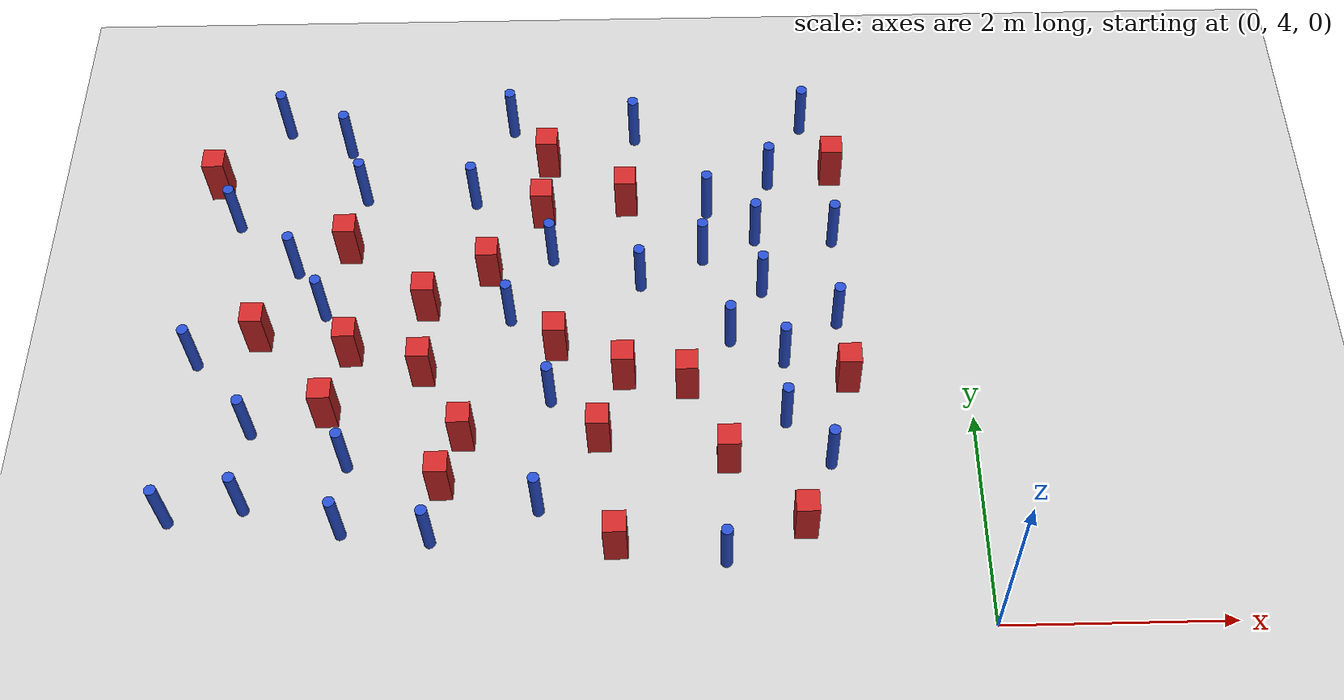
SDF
<sdf version="1.6">
 <world name="default">
  <model name="ground_plane">
   <static>1</static>
   <link name="link">
    <collision name="collision">
     <geometry><plane><normal>0 0 1</normal><size>100 100</size></plane></geometry>
     <surface><friction><ode><mu>100</mu><mu2>50</mu2></ode></friction></surface>
    </collision>
    <visual name="visual">
     <cast_shadows>0</cast_shadows>
     <geometry><plane><normal>0 0 1</normal><size>100 100</size></plane></geometry>
     <material>
      <ambient>1.0 1.0 1.0 1.0</ambient>
      <diffuse>0.8 0.8 0.8 1.0</diffuse>
      <specular>0.01 0.01 0.01 1.000000</specular>
     </material>
    </visual>
   </link>
  </model>
  <model name="square_post_obstacle0">
   <static>true</static>
   <pose>-3.30379232446 5.81546871594 1.91545236811e-07 -7.35059704564e-06 1.12565212e-07 2.39332434364e-05</pose>
   <link name="link">
    <pose>0 0 0.25 0 -0 0</pose>
    <inertial>
     <mass>100</mass>
     <inertia>
      <ixx>0.166667</ixx>
      <ixy>0</ixy>
      <ixz>0</ixz>
      <iyy>0.166667</iyy>
      <iyz>0</iyz>
      <izz>0.166667</izz>
     </inertia>
    </inertial>
    <collision name="collision"><geometry><box><size>.2 .2 .5</size></box></geometry></collision>
    <visual name="visual">
     <geometry><box><size>.2 .2 .5</size></box></geometry>
     <material>
      <script><name>Gazebo/Red</name><uri>file://media/materials/scripts/gazebo.material</uri></script>
     </material>
    </visual>
   </link>
  </model>
  <model name="pole_obstacle9">
   <static>true</static>
   <pose>-1.86990870558 7.98047728358 7.38925637345e-09 -8.47170692799e-08 1.24976764983e-08 -1.74513093021e-07</pose>
   <link name="link">
    <pose>0 0 0.3 0 -0 0</pose>
    <inertial>
     <mass>1</mass>
     <inertia><ixx>0.145833</ixx><ixy>0</ixy><ixz>0</ixz><iyy>0.145833</iyy><iyz>0</iyz><izz>0.125</izz></inertia>
    </inertial>
    <collision name="collision">
     <geometry><cylinder><radius>0.05</radius><length>.6</length></cylinder></geometry>
    </collision>
    <visual name="visual">
     <geometry><cylinder><radius>0.05</radius><length>.6</length></cylinder></geometry>
     <material>
      <script><name>Gazebo/Blue</name><uri>file://media/materials/scripts/gazebo.material</uri></script>
     </material>
    </visual>
   </link>
  </model>
  <model name="square_post_obstacle17">
   <static>true</static>
   <pose>-6.39003009982 6.93364635513 1.91545236811e-07 -7.35059704564e-06 1.12565212e-07 2.39332434364e-05</pose>
   <link name="link">
    <pose>0 0 0.25 0 -0 0</pose>
    <inertial>
     <mass>100</mass>
     <inertia>
      <ixx>0.166667</ixx>
      <ixy>0</ixy>
      <ixz>0</ixz>
      <iyy>0.166667</iyy>
      <iyz>0</iyz>
      <izz>0.166667</izz>
     </inertia>
    </inertial>
    <collision name="collision"><geometry><box><size>.2 .2 .5</size></box></geometry></collision>
    <visual name="visual">
     <geometry><box><size>.2 .2 .5</size></box></geometry>
     <material>
      <script><name>Gazebo/Red</name><uri>file://media/materials/scripts/gazebo.material</uri></script>
     </material>
    </visual>
   </link>
  </model>
  <model name="pole_obstacle27">
   <static>true</static>
   <pose>-4.73113722554 4.85528450265 7.38925637345e-09 -8.47170692796e-08 1.24976764786e-08 -1.74513093032e-07</pose>
   <link name="link">
    <pose>0 0 0.3 0 -0 0</pose>
    <inertial>
     <mass>1</mass>
     <inertia><ixx>0.145833</ixx><ixy>0</ixy><ixz>0</ixz><iyy>0.145833</iyy><iyz>0</iyz><izz>0.125</izz></inertia>
    </inertial>
    <collision name="collision">
     <geometry><cylinder><radius>0.05</radius><length>.6</length></cylinder></geometry>
    </collision>
    <visual name="visual">
     <geometry><cylinder><radius>0.05</radius><length>.6</length></cylinder></geometry>
     <material>
      <script><name>Gazebo/Blue</name><uri>file://media/materials/scripts/gazebo.material</uri></script>
     </material>
    </visual>
   </link>
  </model>
  <model name="pole_obstacle30">
   <static>true</static>
   <pose>-3.76081478767 7.78863613898 7.38925637345e-09 -8.47170692798e-08 1.24976765033e-08 -1.74513093019e-07</pose>
   <link name="link">
    <pose>0 0 0.3 0 -0 0</pose>
    <inertial>
     <mass>1</mass>
     <inertia><ixx>0.145833</ixx><ixy>0</ixy><ixz>0</ixz><iyy>0.145833</iyy><iyz>0</iyz><izz>0.125</izz></inertia>
    </inertial>
    <collision name="collision">
     <geometry><cylinder><radius>0.05</radius><length>.6</length></cylinder></geometry>
    </collision>
    <visual name="visual">
     <geometry><cylinder><radius>0.05</radius><length>.6</length></cylinder></geometry>
     <material>
      <script><name>Gazebo/Blue</name><uri>file://media/materials/scripts/gazebo.material</uri></script>
     </material>
    </visual>
   </link>
  </model>
  <model name="pole_obstacle35">
   <static>true</static>
   <pose>-5.75243212236 9.12343671815 7.38925637345e-09 -8.471706928e-08 1.24976765081e-08 -1.74513093015e-07</pose>
   <link name="link">
    <pose>0 0 0.3 0 -0 0</pose>
    <inertial>
     <mass>1</mass>
     <inertia><ixx>0.145833</ixx><ixy>0</ixy><ixz>0</ixz><iyy>0.145833</iyy><iyz>0</iyz><izz>0.125</izz></inertia>
    </inertial>
    <collision name="collision">
     <geometry><cylinder><radius>0.05</radius><length>.6</length></cylinder></geometry>
    </collision>
    <visual name="visual">
     <geometry><cylinder><radius>0.05</radius><length>.6</length></cylinder></geometry>
     <material>
      <script><name>Gazebo/Blue</name><uri>file://media/materials/scripts/gazebo.material</uri></script>
     </material>
    </visual>
   </link>
  </model>
  <model name="pole_obstacle39">
   <static>true</static>
   <pose>-1.66124735193 5.97604806111 7.38925637345e-09 -8.47170692799e-08 1.24976765033e-08 -1.74513093018e-07</pose>
   <link name="link">
    <pose>0 0 0.3 0 -0 0</pose>
    <inertial>
     <mass>1</mass>
     <inertia><ixx>0.145833</ixx><ixy>0</ixy><ixz>0</ixz><iyy>0.145833</iyy><iyz>0</iyz><izz>0.125</izz></inertia>
    </inertial>
    <collision name="collision">
     <geometry><cylinder><radius>0.05</radius><length>.6</length></cylinder></geometry>
    </collision>
    <visual name="visual">
     <geometry><cylinder><radius>0.05</radius><length>.6</length></cylinder></geometry>
     <material>
      <script><name>Gazebo/Blue</name><uri>file://media/materials/scripts/gazebo.material</uri></script>
     </material>
    </visual>
   </link>
  </model>
  <model name="pole_obstacle44">
   <static>true</static>
   <pose>-6.34896383899 5.19803276872 7.38925637345e-09 -8.47170692796e-08 1.24976764786e-08 -1.74513093032e-07</pose>
   <link name="link">
    <pose>0 0 0.3 0 -0 0</pose>
    <inertial>
     <mass>1</mass>
     <inertia><ixx>0.145833</ixx><ixy>0</ixy><ixz>0</ixz><iyy>0.145833</iyy><iyz>0</iyz><izz>0.125</izz></inertia>
    </inertial>
    <collision name="collision">
     <geometry><cylinder><radius>0.05</radius><length>.6</length></cylinder></geometry>
    </collision>
    <visual name="visual">
     <geometry><cylinder><radius>0.05</radius><length>.6</length></cylinder></geometry>
     <material>
      <script><name>Gazebo/Blue</name><uri>file://media/materials/scripts/gazebo.material</uri></script>
     </material>
    </visual>
   </link>
  </model>
  <model name="pole_obstacle47">
   <static>true</static>
   <pose>-6.128160885 7.6907924941 7.38925637345e-09 -8.47170692796e-08 1.24976764786e-08 -1.74513093032e-07</pose>
   <link name="link">
    <pose>0 0 0.3 0 -0 0</pose>
    <inertial>
     <mass>1</mass>
     <inertia><ixx>0.145833</ixx><ixy>0</ixy><ixz>0</ixz><iyy>0.145833</iyy><iyz>0</iyz><izz>0.125</izz></inertia>
    </inertial>
    <collision name="collision">
     <geometry><cylinder><radius>0.05</radius><length>.6</length></cylinder></geometry>
    </collision>
    <visual name="visual">
     <geometry><cylinder><radius>0.05</radius><length>.6</length></cylinder></geometry>
     <material>
      <script><name>Gazebo/Blue</name><uri>file://media/materials/scripts/gazebo.material</uri></script>
     </material>
    </visual>
   </link>
  </model>
  <model name="square_post_obstacle39">
   <static>true</static>
   <pose>-3.15169501479 4.77271154775 1.91545236811e-07 -7.35059704564e-06 1.12565212e-07 2.39332434364e-05</pose>
   <link name="link">
    <pose>0 0 0.25 0 -0 0</pose>
    <inertial>
     <mass>100</mass>
     <inertia>
      <ixx>0.166667</ixx>
      <ixy>0</ixy>
      <ixz>0</ixz>
      <iyy>0.166667</iyy>
      <iyz>0</iyz>
      <izz>0.166667</izz>
     </inertia>
    </inertial>
    <collision name="collision"><geometry><box><size>.2 .2 .5</size></box></geometry></collision>
    <visual name="visual">
     <geometry><box><size>.2 .2 .5</size></box></geometry>
     <material>
      <script><name>Gazebo/Red</name><uri>file://media/materials/scripts/gazebo.material</uri></script>
     </material>
    </visual>
   </link>
  </model>
  <model name="pole_obstacle51">
   <static>true</static>
   <pose>-6.37267905607 9.38683309432 7.38925637345e-09 -8.471706928e-08 1.24976765081e-08 -1.74513093015e-07</pose>
   <link name="link">
    <pose>0 0 0.3 0 -0 0</pose>
    <inertial>
     <mass>1</mass>
     <inertia><ixx>0.145833</ixx><ixy>0</ixy><ixz>0</ixz><iyy>0.145833</iyy><iyz>0</iyz><izz>0.125</izz></inertia>
    </inertial>
    <collision name="collision">
     <geometry><cylinder><radius>0.05</radius><length>.6</length></cylinder></geometry>
    </collision>
    <visual name="visual">
     <geometry><cylinder><radius>0.05</radius><length>.6</length></cylinder></geometry>
     <material>
      <script><name>Gazebo/Blue</name><uri>file://media/materials/scripts/gazebo.material</uri></script>
     </material>
    </visual>
   </link>
  </model>
  <model name="pole_obstacle54">
   <static>true</static>
   <pose>-6.73180714724 8.24266015289 7.38925637345e-09 -8.471706928e-08 1.24976765081e-08 -1.74513093015e-07</pose>
   <link name="link">
    <pose>0 0 0.3 0 -0 0</pose>
    <inertial>
     <mass>1</mass>
     <inertia><ixx>0.145833</ixx><ixy>0</ixy><ixz>0</ixz><iyy>0.145833</iyy><iyz>0</iyz><izz>0.125</izz></inertia>
    </inertial>
    <collision name="collision">
     <geometry><cylinder><radius>0.05</radius><length>.6</length></cylinder></geometry>
    </collision>
    <visual name="visual">
     <geometry><cylinder><radius>0.05</radius><length>.6</length></cylinder></geometry>
     <material>
      <script><name>Gazebo/Blue</name><uri>file://media/materials/scripts/gazebo.material</uri></script>
     </material>
    </visual>
   </link>
  </model>
  <model name="pole_obstacle59">
   <static>true</static>
   <pose>-3.00285871113 9.23412983313 7.38925637345e-09 -8.47170692799e-08 1.24976765012e-08 -1.74513093021e-07</pose>
   <link name="link">
    <pose>0 0 0.3 0 -0 0</pose>
    <inertial>
     <mass>1</mass>
     <inertia><ixx>0.145833</ixx><ixy>0</ixy><ixz>0</ixz><iyy>0.145833</iyy><iyz>0</iyz><izz>0.125</izz></inertia>
    </inertial>
    <collision name="collision">
     <geometry><cylinder><radius>0.05</radius><length>.6</length></cylinder></geometry>
    </collision>
    <visual name="visual">
     <geometry><cylinder><radius>0.05</radius><length>.6</length></cylinder></geometry>
     <material>
      <script><name>Gazebo/Blue</name><uri>file://media/materials/scripts/gazebo.material</uri></script>
     </material>
    </visual>
   </link>
  </model>
  <model name="square_post_obstacle45">
   <static>true</static>
   <pose>-3.07791340013 8.40960955171 1.91545236811e-07 -7.35059704564e-06 1.12565212e-07 2.39332434364e-05</pose>
   <link name="link">
    <pose>0 0 0.25 0 -0 0</pose>
    <inertial>
     <mass>100</mass>
     <inertia>
      <ixx>0.166667</ixx>
      <ixy>0</ixy>
      <ixz>0</ixz>
      <iyy>0.166667</iyy>
      <iyz>0</iyz>
      <izz>0.166667</izz>
     </inertia>
    </inertial>
    <collision name="collision"><geometry><box><size>.2 .2 .5</size></box></geometry></collision>
    <visual name="visual">
     <geometry><box><size>.2 .2 .5</size></box></geometry>
     <material>
      <script><name>Gazebo/Red</name><uri>file://media/materials/scripts/gazebo.material</uri></script>
     </material>
    </visual>
   </link>
  </model>
  <model name="pole_obstacle60">
   <static>true</static>
   <pose>-6.93915063037 6.68938702295 7.38925637345e-09 -8.47170692796e-08 1.24976764786e-08 -1.74513093032e-07</pose>
   <link name="link">
    <pose>0 0 0.3 0 -0 0</pose>
    <inertial>
     <mass>1</mass>
     <inertia><ixx>0.145833</ixx><ixy>0</ixy><ixz>0</ixz><iyy>0.145833</iyy><iyz>0</iyz><izz>0.125</izz></inertia>
    </inertial>
    <collision name="collision">
     <geometry><cylinder><radius>0.05</radius><length>.6</length></cylinder></geometry>
    </collision>
    <visual name="visual">
     <geometry><cylinder><radius>0.05</radius><length>.6</length></cylinder></geometry>
     <material>
      <script><name>Gazebo/Blue</name><uri>file://media/materials/scripts/gazebo.material</uri></script>
     </material>
    </visual>
   </link>
  </model>
  <model name="pole_obstacle65">
   <static>true</static>
   <pose>-5.49880080312 5.60649977016 7.38925637345e-09 -8.47170692796e-08 1.24976764786e-08 -1.74513093032e-07</pose>
   <link name="link">
    <pose>0 0 0.3 0 -0 0</pose>
    <inertial>
     <mass>1</mass>
     <inertia><ixx>0.145833</ixx><ixy>0</ixy><ixz>0</ixz><iyy>0.145833</iyy><iyz>0</iyz><izz>0.125</izz></inertia>
    </inertial>
    <collision name="collision">
     <geometry><cylinder><radius>0.05</radius><length>.6</length></cylinder></geometry>
    </collision>
    <visual name="visual">
     <geometry><cylinder><radius>0.05</radius><length>.6</length></cylinder></geometry>
     <material>
      <script><name>Gazebo/Blue</name><uri>file://media/materials/scripts/gazebo.material</uri></script>
     </material>
    </visual>
   </link>
  </model>
  <model name="pole_obstacle66">
   <static>true</static>
   <pose>-2.13059522505 6.84417420848 7.38925637345e-09 -8.47170692798e-08 1.24976765033e-08 -1.74513093019e-07</pose>
   <link name="link">
    <pose>0 0 0.3 0 -0 0</pose>
    <inertial>
     <mass>1</mass>
     <inertia><ixx>0.145833</ixx><ixy>0</ixy><ixz>0</ixz><iyy>0.145833</iyy><iyz>0</iyz><izz>0.125</izz></inertia>
    </inertial>
    <collision name="collision">
     <geometry><cylinder><radius>0.05</radius><length>.6</length></cylinder></geometry>
    </collision>
    <visual name="visual">
     <geometry><cylinder><radius>0.05</radius><length>.6</length></cylinder></geometry>
     <material>
      <script><name>Gazebo/Blue</name><uri>file://media/materials/scripts/gazebo.material</uri></script>
     </material>
    </visual>
   </link>
  </model>
  <model name="square_post_obstacle51">
   <static>true</static>
   <pose>-1.09454161656 6.3878625246 1.91545236811e-07 -7.35059704564e-06 1.12565212e-07 2.39332434364e-05</pose>
   <link name="link">
    <pose>0 0 0.25 0 -0 0</pose>
    <inertial>
     <mass>100</mass>
     <inertia>
      <ixx>0.166667</ixx>
      <ixy>0</ixy>
      <ixz>0</ixz>
      <iyy>0.166667</iyy>
      <iyz>0</iyz>
      <izz>0.166667</izz>
     </inertia>
    </inertial>
    <collision name="collision"><geometry><box><size>.2 .2 .5</size></box></geometry></collision>
    <visual name="visual">
     <geometry><box><size>.2 .2 .5</size></box></geometry>
     <material>
      <script><name>Gazebo/Red</name><uri>file://media/materials/scripts/gazebo.material</uri></script>
     </material>
    </visual>
   </link>
  </model>
  <model name="pole_obstacle69">
   <static>true</static>
   <pose>-2.94196895569 7.47665109834 7.38925637345e-09 -8.47170692798e-08 1.24976765033e-08 -1.74513093019e-07</pose>
   <link name="link">
    <pose>0 0 0.3 0 -0 0</pose>
    <inertial>
     <mass>1</mass>
     <inertia><ixx>0.145833</ixx><ixy>0</ixy><ixz>0</ixz><iyy>0.145833</iyy><iyz>0</iyz><izz>0.125</izz></inertia>
    </inertial>
    <collision name="collision">
     <geometry><cylinder><radius>0.05</radius><length>.6</length></cylinder></geometry>
    </collision>
    <visual name="visual">
     <geometry><cylinder><radius>0.05</radius><length>.6</length></cylinder></geometry>
     <material>
      <script><name>Gazebo/Blue</name><uri>file://media/materials/scripts/gazebo.material</uri></script>
     </material>
    </visual>
   </link>
  </model>
  <model name="pole_obstacle78">
   <static>true</static>
   <pose>-1.38253315544 9.34004506308 7.38925637345e-09 -8.47170692798e-08 1.24976764881e-08 -1.74513093027e-07</pose>
   <link name="link">
    <pose>0 0 0.3 0 -0 0</pose>
    <inertial>
     <mass>1</mass>
     <inertia><ixx>0.145833</ixx><ixy>0</ixy><ixz>0</ixz><iyy>0.145833</iyy><iyz>0</iyz><izz>0.125</izz></inertia>
    </inertial>
    <collision name="collision">
     <geometry><cylinder><radius>0.05</radius><length>.6</length></cylinder></geometry>
    </collision>
    <visual name="visual">
     <geometry><cylinder><radius>0.05</radius><length>.6</length></cylinder></geometry>
     <material>
      <script><name>Gazebo/Blue</name><uri>file://media/materials/scripts/gazebo.material</uri></script>
     </material>
    </visual>
   </link>
  </model>
  <model name="square_post_obstacle68">
   <static>true</static>
   <pose>-3.70197626009 6.77885871719 1.91545236811e-07 -7.35059704564e-06 1.12565212e-07 2.39332434364e-05</pose>
   <link name="link">
    <pose>0 0 0.25 0 -0 0</pose>
    <inertial>
     <mass>100</mass>
     <inertia>
      <ixx>0.166667</ixx>
      <ixy>0</ixy>
      <ixz>0</ixz>
      <iyy>0.166667</iyy>
      <iyz>0</iyz>
      <izz>0.166667</izz>
     </inertia>
    </inertial>
    <collision name="collision"><geometry><box><size>.2 .2 .5</size></box></geometry></collision>
    <visual name="visual">
     <geometry><box><size>.2 .2 .5</size></box></geometry>
     <material>
      <script><name>Gazebo/Red</name><uri>file://media/materials/scripts/gazebo.material</uri></script>
     </material>
    </visual>
   </link>
  </model>
  <model name="pole_obstacle89">
   <static>true</static>
   <pose>-5.55617129512 8.53514595816 7.38925637345e-09 -8.471706928e-08 1.24976765081e-08 -1.74513093015e-07</pose>
   <link name="link">
    <pose>0 0 0.3 0 -0 0</pose>
    <inertial>
     <mass>1</mass>
     <inertia><ixx>0.145833</ixx><ixy>0</ixy><ixz>0</ixz><iyy>0.145833</iyy><iyz>0</iyz><izz>0.125</izz></inertia>
    </inertial>
    <collision name="collision">
     <geometry><cylinder><radius>0.05</radius><length>.6</length></cylinder></geometry>
    </collision>
    <visual name="visual">
     <geometry><cylinder><radius>0.05</radius><length>.6</length></cylinder></geometry>
     <material>
      <script><name>Gazebo/Blue</name><uri>file://media/materials/scripts/gazebo.material</uri></script>
     </material>
    </visual>
   </link>
  </model>
  <model name="square_post_obstacle79">
   <static>true</static>
   <pose>-4.89126660328 7.23790016101 1.91545236811e-07 -7.35059704564e-06 1.12565212e-07 2.39332434364e-05</pose>
   <link name="link">
    <pose>0 0 0.25 0 -0 0</pose>
    <inertial>
     <mass>100</mass>
     <inertia>
      <ixx>0.166667</ixx>
      <ixy>0</ixy>
      <ixz>0</ixz>
      <iyy>0.166667</iyy>
      <iyz>0</iyz>
      <izz>0.166667</izz>
     </inertia>
    </inertial>
    <collision name="collision"><geometry><box><size>.2 .2 .5</size></box></geometry></collision>
    <visual name="visual">
     <geometry><box><size>.2 .2 .5</size></box></geometry>
     <material>
      <script><name>Gazebo/Red</name><uri>file://media/materials/scripts/gazebo.material</uri></script>
     </material>
    </visual>
   </link>
  </model>
  <model name="square_post_obstacle80">
   <static>true</static>
   <pose>-4.65863967462 5.36944663271 1.91545236811e-07 -7.35059704564e-06 1.12565212e-07 2.39332434364e-05</pose>
   <link name="link">
    <pose>0 0 0.25 0 -0 0</pose>
    <inertial>
     <mass>100</mass>
     <inertia>
      <ixx>0.166667</ixx>
      <ixy>0</ixy>
      <ixz>0</ixz>
      <iyy>0.166667</iyy>
      <iyz>0</iyz>
      <izz>0.166667</izz>
     </inertia>
    </inertial>
    <collision name="collision"><geometry><box><size>.2 .2 .5</size></box></geometry></collision>
    <visual name="visual">
     <geometry><box><size>.2 .2 .5</size></box></geometry>
     <material>
      <script><name>Gazebo/Red</name><uri>file://media/materials/scripts/gazebo.material</uri></script>
     </material>
    </visual>
   </link>
  </model>
  <model name="pole_obstacle92">
   <static>true</static>
   <pose>-4.51150518805 8.47326835099 7.38925637345e-09 -8.471706928e-08 1.24976765081e-08 -1.74513093015e-07</pose>
   <link name="link">
    <pose>0 0 0.3 0 -0 0</pose>
    <inertial>
     <mass>1</mass>
     <inertia><ixx>0.145833</ixx><ixy>0</ixy><ixz>0</ixz><iyy>0.145833</iyy><iyz>0</iyz><izz>0.125</izz></inertia>
    </inertial>
    <collision name="collision">
     <geometry><cylinder><radius>0.05</radius><length>.6</length></cylinder></geometry>
    </collision>
    <visual name="visual">
     <geometry><cylinder><radius>0.05</radius><length>.6</length></cylinder></geometry>
     <material>
      <script><name>Gazebo/Blue</name><uri>file://media/materials/scripts/gazebo.material</uri></script>
     </material>
    </visual>
   </link>
  </model>
  <model name="pole_obstacle102">
   <static>true</static>
   <pose>-3.81985421989 5.14120044314 7.38925637345e-09 -8.47170692798e-08 1.24976765033e-08 -1.74513093019e-07</pose>
   <link name="link">
    <pose>0 0 0.3 0 -0 0</pose>
    <inertial>
     <mass>1</mass>
     <inertia><ixx>0.145833</ixx><ixy>0</ixy><ixz>0</ixz><iyy>0.145833</iyy><iyz>0</iyz><izz>0.125</izz></inertia>
    </inertial>
    <collision name="collision">
     <geometry><cylinder><radius>0.05</radius><length>.6</length></cylinder></geometry>
    </collision>
    <visual name="visual">
     <geometry><cylinder><radius>0.05</radius><length>.6</length></cylinder></geometry>
     <material>
      <script><name>Gazebo/Blue</name><uri>file://media/materials/scripts/gazebo.material</uri></script>
     </material>
    </visual>
   </link>
  </model>
  <model name="square_post_obstacle99">
   <static>true</static>
   <pose>-2.52771149036 6.34987996807 1.91545236811e-07 -7.35059704564e-06 1.12565212e-07 2.39332434364e-05</pose>
   <link name="link">
    <pose>0 0 0.25 0 -0 0</pose>
    <inertial>
     <mass>100</mass>
     <inertia>
      <ixx>0.166667</ixx>
      <ixy>0</ixy>
      <ixz>0</ixz>
      <iyy>0.166667</iyy>
      <iyz>0</iyz>
      <izz>0.166667</izz>
     </inertia>
    </inertial>
    <collision name="collision"><geometry><box><size>.2 .2 .5</size></box></geometry></collision>
    <visual name="visual">
     <geometry><box><size>.2 .2 .5</size></box></geometry>
     <material>
      <script><name>Gazebo/Red</name><uri>file://media/materials/scripts/gazebo.material</uri></script>
     </material>
    </visual>
   </link>
  </model>
  <model name="square_post_obstacle116">
   <static>true</static>
   <pose>-5.70965550604 6.1209314035 1.91545236811e-07 -7.35059704564e-06 1.12565212e-07 2.39332434364e-05</pose>
   <link name="link">
    <pose>0 0 0.25 0 -0 0</pose>
    <inertial>
     <mass>100</mass>
     <inertia>
      <ixx>0.166667</ixx>
      <ixy>0</ixy>
      <ixz>0</ixz>
      <iyy>0.166667</iyy>
      <iyz>0</iyz>
      <izz>0.166667</izz>
     </inertia>
    </inertial>
    <collision name="collision"><geometry><box><size>.2 .2 .5</size></box></geometry></collision>
    <visual name="visual">
     <geometry><box><size>.2 .2 .5</size></box></geometry>
     <material>
      <script><name>Gazebo/Red</name><uri>file://media/materials/scripts/gazebo.material</uri></script>
     </material>
    </visual>
   </link>
  </model>
  <model name="pole_obstacle124">
   <static>true</static>
   <pose>-2.36284403695 7.76217231316 7.38925637345e-09 -8.47170692798e-08 1.24976765033e-08 -1.74513093019e-07</pose>
   <link name="link">
    <pose>0 0 0.3 0 -0 0</pose>
    <inertial>
     <mass>1</mass>
     <inertia><ixx>0.145833</ixx><ixy>0</ixy><ixz>0</ixz><iyy>0.145833</iyy><iyz>0</iyz><izz>0.125</izz></inertia>
    </inertial>
    <collision name="collision">
     <geometry><cylinder><radius>0.05</radius><length>.6</length></cylinder></geometry>
    </collision>
    <visual name="visual">
     <geometry><cylinder><radius>0.05</radius><length>.6</length></cylinder></geometry>
     <material>
      <script><name>Gazebo/Blue</name><uri>file://media/materials/scripts/gazebo.material</uri></script>
     </material>
    </visual>
   </link>
  </model>
  <model name="square_post_obstacle130">
   <static>true</static>
   <pose>-1.54239961181 4.93112371428 1.91545236811e-07 -7.35059704564e-06 1.12565212e-07 2.39332434364e-05</pose>
   <link name="link">
    <pose>0 0 0.25 0 -0 0</pose>
    <inertial>
     <mass>100</mass>
     <inertia>
      <ixx>0.166667</ixx>
      <ixy>0</ixy>
      <ixz>0</ixz>
      <iyy>0.166667</iyy>
      <iyz>0</iyz>
      <izz>0.166667</izz>
     </inertia>
    </inertial>
    <collision name="collision"><geometry><box><size>.2 .2 .5</size></box></geometry></collision>
    <visual name="visual">
     <geometry><box><size>.2 .2 .5</size></box></geometry>
     <material>
      <script><name>Gazebo/Red</name><uri>file://media/materials/scripts/gazebo.material</uri></script>
     </material>
    </visual>
   </link>
  </model>
  <model name="pole_obstacle136">
   <static>true</static>
   <pose>-1.82360286269 7.38423173146 7.38925637345e-09 -8.47170692799e-08 1.24976765033e-08 -1.74513093018e-07</pose>
   <link name="link">
    <pose>0 0 0.3 0 -0 0</pose>
    <inertial>
     <mass>1</mass>
     <inertia><ixx>0.145833</ixx><ixy>0</ixy><ixz>0</ixz><iyy>0.145833</iyy><iyz>0</iyz><izz>0.125</izz></inertia>
    </inertial>
    <collision name="collision">
     <geometry><cylinder><radius>0.05</radius><length>.6</length></cylinder></geometry>
    </collision>
    <visual name="visual">
     <geometry><cylinder><radius>0.05</radius><length>.6</length></cylinder></geometry>
     <material>
      <script><name>Gazebo/Blue</name><uri>file://media/materials/scripts/gazebo.material</uri></script>
     </material>
    </visual>
   </link>
  </model>
  <model name="pole_obstacle140">
   <static>true</static>
   <pose>-1.28619909539 5.54902241621 7.38925637345e-09 -8.47170692799e-08 1.24976765033e-08 -1.74513093018e-07</pose>
   <link name="link">
    <pose>0 0 0.3 0 -0 0</pose>
    <inertial>
     <mass>1</mass>
     <inertia><ixx>0.145833</ixx><ixy>0</ixy><ixz>0</ixz><iyy>0.145833</iyy><iyz>0</iyz><izz>0.125</izz></inertia>
    </inertial>
    <collision name="collision">
     <geometry><cylinder><radius>0.05</radius><length>.6</length></cylinder></geometry>
    </collision>
    <visual name="visual">
     <geometry><cylinder><radius>0.05</radius><length>.6</length></cylinder></geometry>
     <material>
      <script><name>Gazebo/Blue</name><uri>file://media/materials/scripts/gazebo.material</uri></script>
     </material>
    </visual>
   </link>
  </model>
  <model name="pole_obstacle141">
   <static>true</static>
   <pose>-2.31529848678 8.31888241724 7.38925637345e-09 -8.47170692793e-08 1.24976764408e-08 -1.74513093041e-07</pose>
   <link name="link">
    <pose>0 0 0.3 0 -0 0</pose>
    <inertial>
     <mass>1</mass>
     <inertia><ixx>0.145833</ixx><ixy>0</ixy><ixz>0</ixz><iyy>0.145833</iyy><iyz>0</iyz><izz>0.125</izz></inertia>
    </inertial>
    <collision name="collision">
     <geometry><cylinder><radius>0.05</radius><length>.6</length></cylinder></geometry>
    </collision>
    <visual name="visual">
     <geometry><cylinder><radius>0.05</radius><length>.6</length></cylinder></geometry>
     <material>
      <script><name>Gazebo/Blue</name><uri>file://media/materials/scripts/gazebo.material</uri></script>
     </material>
    </visual>
   </link>
  </model>
  <model name="pole_obstacle142">
   <static>true</static>
   <pose>-3.74267596485 6.23554013191 7.38925637345e-09 -8.47170692798e-08 1.24976765033e-08 -1.74513093019e-07</pose>
   <link name="link">
    <pose>0 0 0.3 0 -0 0</pose>
    <inertial>
     <mass>1</mass>
     <inertia><ixx>0.145833</ixx><ixy>0</ixy><ixz>0</ixz><iyy>0.145833</iyy><iyz>0</iyz><izz>0.125</izz></inertia>
    </inertial>
    <collision name="collision">
     <geometry><cylinder><radius>0.05</radius><length>.6</length></cylinder></geometry>
    </collision>
    <visual name="visual">
     <geometry><cylinder><radius>0.05</radius><length>.6</length></cylinder></geometry>
     <material>
      <script><name>Gazebo/Blue</name><uri>file://media/materials/scripts/gazebo.material</uri></script>
     </material>
    </visual>
   </link>
  </model>
  <model name="pole_obstacle152">
   <static>true</static>
   <pose>-5.8322884307 7.20378401268 7.38925637345e-09 -8.47170692796e-08 1.24976764786e-08 -1.74513093032e-07</pose>
   <link name="link">
    <pose>0 0 0.3 0 -0 0</pose>
    <inertial>
     <mass>1</mass>
     <inertia><ixx>0.145833</ixx><ixy>0</ixy><ixz>0</ixz><iyy>0.145833</iyy><iyz>0</iyz><izz>0.125</izz></inertia>
    </inertial>
    <collision name="collision">
     <geometry><cylinder><radius>0.05</radius><length>.6</length></cylinder></geometry>
    </collision>
    <visual name="visual">
     <geometry><cylinder><radius>0.05</radius><length>.6</length></cylinder></geometry>
     <material>
      <script><name>Gazebo/Blue</name><uri>file://media/materials/scripts/gazebo.material</uri></script>
     </material>
    </visual>
   </link>
  </model>
  <model name="square_post_obstacle145">
   <static>true</static>
   <pose>-4.33435543626 7.61663694808 1.91545236811e-07 -7.35059704564e-06 1.12565212e-07 2.39332434364e-05</pose>
   <link name="link">
    <pose>0 0 0.25 0 -0 0</pose>
    <inertial>
     <mass>100</mass>
     <inertia>
      <ixx>0.166667</ixx>
      <ixy>0</ixy>
      <ixz>0</ixz>
      <iyy>0.166667</iyy>
      <iyz>0</iyz>
      <izz>0.166667</izz>
     </inertia>
    </inertial>
    <collision name="collision"><geometry><box><size>.2 .2 .5</size></box></geometry></collision>
    <visual name="visual">
     <geometry><box><size>.2 .2 .5</size></box></geometry>
     <material>
      <script><name>Gazebo/Red</name><uri>file://media/materials/scripts/gazebo.material</uri></script>
     </material>
    </visual>
   </link>
  </model>
  <model name="square_post_obstacle146">
   <static>true</static>
   <pose>-4.49613077269 5.85280548165 1.91545236811e-07 -7.35059704564e-06 1.12565212e-07 2.39332434364e-05</pose>
   <link name="link">
    <pose>0 0 0.25 0 -0 0</pose>
    <inertial>
     <mass>100</mass>
     <inertia>
      <ixx>0.166667</ixx>
      <ixy>0</ixy>
      <ixz>0</ixz>
      <iyy>0.166667</iyy>
      <iyz>0</iyz>
      <izz>0.166667</izz>
     </inertia>
    </inertial>
    <collision name="collision"><geometry><box><size>.2 .2 .5</size></box></geometry></collision>
    <visual name="visual">
     <geometry><box><size>.2 .2 .5</size></box></geometry>
     <material>
      <script><name>Gazebo/Red</name><uri>file://media/materials/scripts/gazebo.material</uri></script>
     </material>
    </visual>
   </link>
  </model>
  <model name="pole_obstacle157">
   <static>true</static>
   <pose>-1.15266067075 7.01925317181 7.38925637345e-09 -8.47170692799e-08 1.24976765033e-08 -1.74513093018e-07</pose>
   <link name="link">
    <pose>0 0 0.3 0 -0 0</pose>
    <inertial>
     <mass>1</mass>
     <inertia><ixx>0.145833</ixx><ixy>0</ixy><ixz>0</ixz><iyy>0.145833</iyy><iyz>0</iyz><izz>0.125</izz></inertia>
    </inertial>
    <collision name="collision">
     <geometry><cylinder><radius>0.05</radius><length>.6</length></cylinder></geometry>
    </collision>
    <visual name="visual">
     <geometry><cylinder><radius>0.05</radius><length>.6</length></cylinder></geometry>
     <material>
      <script><name>Gazebo/Blue</name><uri>file://media/materials/scripts/gazebo.material</uri></script>
     </material>
    </visual>
   </link>
  </model>
  <model name="square_post_obstacle166">
   <static>true</static>
   <pose>-5.55465357889 6.7547646704 1.91545236811e-07 -7.35059704564e-06 1.12565212e-07 2.39332434364e-05</pose>
   <link name="link">
    <pose>0 0 0.25 0 -0 0</pose>
    <inertial>
     <mass>100</mass>
     <inertia>
      <ixx>0.166667</ixx>
      <ixy>0</ixy>
      <ixz>0</ixz>
      <iyy>0.166667</iyy>
      <iyz>0</iyz>
      <izz>0.166667</izz>
     </inertia>
    </inertial>
    <collision name="collision"><geometry><box><size>.2 .2 .5</size></box></geometry></collision>
    <visual name="visual">
     <geometry><box><size>.2 .2 .5</size></box></geometry>
     <material>
      <script><name>Gazebo/Red</name><uri>file://media/materials/scripts/gazebo.material</uri></script>
     </material>
    </visual>
   </link>
  </model>
  <model name="square_post_obstacle167">
   <static>true</static>
   <pose>-2.17835227855 5.58489014198 1.91545236811e-07 -7.35059704564e-06 1.12565212e-07 2.39332434364e-05</pose>
   <link name="link">
    <pose>0 0 0.25 0 -0 0</pose>
    <inertial>
     <mass>100</mass>
     <inertia>
      <ixx>0.166667</ixx>
      <ixy>0</ixy>
      <ixz>0</ixz>
      <iyy>0.166667</iyy>
      <iyz>0</iyz>
      <izz>0.166667</izz>
     </inertia>
    </inertial>
    <collision name="collision"><geometry><box><size>.2 .2 .5</size></box></geometry></collision>
    <visual name="visual">
     <geometry><box><size>.2 .2 .5</size></box></geometry>
     <material>
      <script><name>Gazebo/Red</name><uri>file://media/materials/scripts/gazebo.material</uri></script>
     </material>
    </visual>
   </link>
  </model>
  <model name="pole_obstacle171">
   <static>true</static>
   <pose>-4.13173530534 7.11336381077 7.38925637345e-09 -8.47170692796e-08 1.24976764786e-08 -1.74513093032e-07</pose>
   <link name="link">
    <pose>0 0 0.3 0 -0 0</pose>
    <inertial>
     <mass>1</mass>
     <inertia><ixx>0.145833</ixx><ixy>0</ixy><ixz>0</ixz><iyy>0.145833</iyy><iyz>0</iyz><izz>0.125</izz></inertia>
    </inertial>
    <collision name="collision">
     <geometry><cylinder><radius>0.05</radius><length>.6</length></cylinder></geometry>
    </collision>
    <visual name="visual">
     <geometry><cylinder><radius>0.05</radius><length>.6</length></cylinder></geometry>
     <material>
      <script><name>Gazebo/Blue</name><uri>file://media/materials/scripts/gazebo.material</uri></script>
     </material>
    </visual>
   </link>
  </model>
  <model name="pole_obstacle178">
   <static>true</static>
   <pose>-2.22255673559 4.62341147842 7.38925637345e-09 -8.47170692798e-08 1.24976765033e-08 -1.74513093019e-07</pose>
   <link name="link">
    <pose>0 0 0.3 0 -0 0</pose>
    <inertial>
     <mass>1</mass>
     <inertia><ixx>0.145833</ixx><ixy>0</ixy><ixz>0</ixz><iyy>0.145833</iyy><iyz>0</iyz><izz>0.125</izz></inertia>
    </inertial>
    <collision name="collision">
     <geometry><cylinder><radius>0.05</radius><length>.6</length></cylinder></geometry>
    </collision>
    <visual name="visual">
     <geometry><cylinder><radius>0.05</radius><length>.6</length></cylinder></geometry>
     <material>
      <script><name>Gazebo/Blue</name><uri>file://media/materials/scripts/gazebo.material</uri></script>
     </material>
    </visual>
   </link>
  </model>
  <model name="pole_obstacle179">
   <static>true</static>
   <pose>-6.37350319891 5.95513121715 7.38925637345e-09 -8.47170692796e-08 1.24976764786e-08 -1.74513093032e-07</pose>
   <link name="link">
    <pose>0 0 0.3 0 -0 0</pose>
    <inertial>
     <mass>1</mass>
     <inertia><ixx>0.145833</ixx><ixy>0</ixy><ixz>0</ixz><iyy>0.145833</iyy><iyz>0</iyz><izz>0.125</izz></inertia>
    </inertial>
    <collision name="collision">
     <geometry><cylinder><radius>0.05</radius><length>.6</length></cylinder></geometry>
    </collision>
    <visual name="visual">
     <geometry><cylinder><radius>0.05</radius><length>.6</length></cylinder></geometry>
     <material>
      <script><name>Gazebo/Blue</name><uri>file://media/materials/scripts/gazebo.material</uri></script>
     </material>
    </visual>
   </link>
  </model>
  <model name="square_post_obstacle179">
   <static>true</static>
   <pose>-3.85613207961 8.28285291862 1.91545236811e-07 -7.35059704564e-06 1.12565212e-07 2.39332434364e-05</pose>
   <link name="link">
    <pose>0 0 0.25 0 -0 0</pose>
    <inertial>
     <mass>100</mass>
     <inertia>
      <ixx>0.166667</ixx>
      <ixy>0</ixy>
      <ixz>0</ixz>
      <iyy>0.166667</iyy>
      <iyz>0</iyz>
      <izz>0.166667</izz>
     </inertia>
    </inertial>
    <collision name="collision"><geometry><box><size>.2 .2 .5</size></box></geometry></collision>
    <visual name="visual">
     <geometry><box><size>.2 .2 .5</size></box></geometry>
     <material>
      <script><name>Gazebo/Red</name><uri>file://media/materials/scripts/gazebo.material</uri></script>
     </material>
    </visual>
   </link>
  </model>
  <model name="pole_obstacle183">
   <static>true</static>
   <pose>-1.14405722999 7.94776853576 7.38925637345e-09 -8.47170692799e-08 1.24976765033e-08 -1.74513093018e-07</pose>
   <link name="link">
    <pose>0 0 0.3 0 -0 0</pose>
    <inertial>
     <mass>1</mass>
     <inertia><ixx>0.145833</ixx><ixy>0</ixy><ixz>0</ixz><iyy>0.145833</iyy><iyz>0</iyz><izz>0.125</izz></inertia>
    </inertial>
    <collision name="collision">
     <geometry><cylinder><radius>0.05</radius><length>.6</length></cylinder></geometry>
    </collision>
    <visual name="visual">
     <geometry><cylinder><radius>0.05</radius><length>.6</length></cylinder></geometry>
     <material>
      <script><name>Gazebo/Blue</name><uri>file://media/materials/scripts/gazebo.material</uri></script>
     </material>
    </visual>
   </link>
  </model>
  <model name="square_post_obstacle184">
   <static>true</static>
   <pose>-1.12520916749 8.74416593642 1.91545236811e-07 -7.35059704564e-06 1.12565212e-07 2.39332434364e-05</pose>
   <link name="link">
    <pose>0 0 0.25 0 -0 0</pose>
    <inertial>
     <mass>100</mass>
     <inertia>
      <ixx>0.166667</ixx>
      <ixy>0</ixy>
      <ixz>0</ixz>
      <iyy>0.166667</iyy>
      <iyz>0</iyz>
      <izz>0.166667</izz>
     </inertia>
    </inertial>
    <collision name="collision"><geometry><box><size>.2 .2 .5</size></box></geometry></collision>
    <visual name="visual">
     <geometry><box><size>.2 .2 .5</size></box></geometry>
     <material>
      <script><name>Gazebo/Red</name><uri>file://media/materials/scripts/gazebo.material</uri></script>
     </material>
    </visual>
   </link>
  </model>
  <model name="square_post_obstacle185">
   <static>true</static>
   <pose>-4.8865181087 6.53003312468 1.91545236811e-07 -7.35059704564e-06 1.12565212e-07 2.39332434364e-05</pose>
   <link name="link">
    <pose>0 0 0.25 0 -0 0</pose>
    <inertial>
     <mass>100</mass>
     <inertia>
      <ixx>0.166667</ixx>
      <ixy>0</ixy>
      <ixz>0</ixz>
      <iyy>0.166667</iyy>
      <iyz>0</iyz>
      <izz>0.166667</izz>
     </inertia>
    </inertial>
    <collision name="collision"><geometry><box><size>.2 .2 .5</size></box></geometry></collision>
    <visual name="visual">
     <geometry><box><size>.2 .2 .5</size></box></geometry>
     <material>
      <script><name>Gazebo/Red</name><uri>file://media/materials/scripts/gazebo.material</uri></script>
     </material>
    </visual>
   </link>
  </model>
  <model name="square_post_obstacle186">
   <static>true</static>
   <pose>-3.82252304647 8.90315156672 1.91545236811e-07 -7.35059704564e-06 1.12565212e-07 2.39332434364e-05</pose>
   <link name="link">
    <pose>0 0 0.25 0 -0 0</pose>
    <inertial>
     <mass>100</mass>
     <inertia>
      <ixx>0.166667</ixx>
      <ixy>0</ixy>
      <ixz>0</ixz>
      <iyy>0.166667</iyy>
      <iyz>0</iyz>
      <izz>0.166667</izz>
     </inertia>
    </inertial>
    <collision name="collision"><geometry><box><size>.2 .2 .5</size></box></geometry></collision>
    <visual name="visual">
     <geometry><box><size>.2 .2 .5</size></box></geometry>
     <material>
      <script><name>Gazebo/Red</name><uri>file://media/materials/scripts/gazebo.material</uri></script>
     </material>
    </visual>
   </link>
  </model>
  <model name="square_post_obstacle196">
   <static>true</static>
   <pose>-5.65265813045 7.90776791123 1.91545236811e-07 -7.35059704564e-06 1.12565212e-07 2.39332434364e-05</pose>
   <link name="link">
    <pose>0 0 0.25 0 -0 0</pose>
    <inertial>
     <mass>100</mass>
     <inertia>
      <ixx>0.166667</ixx>
      <ixy>0</ixy>
      <ixz>0</ixz>
      <iyy>0.166667</iyy>
      <iyz>0</iyz>
      <izz>0.166667</izz>
     </inertia>
    </inertial>
    <collision name="collision"><geometry><box><size>.2 .2 .5</size></box></geometry></collision>
    <visual name="visual">
     <geometry><box><size>.2 .2 .5</size></box></geometry>
     <material>
      <script><name>Gazebo/Red</name><uri>file://media/materials/scripts/gazebo.material</uri></script>
     </material>
    </visual>
   </link>
  </model>
  <model name="square_post_obstacle200">
   <static>true</static>
   <pose>-3.08987734953 6.45862463062 1.91545236811e-07 -7.35059704564e-06 1.12565212e-07 2.39332434364e-05</pose>
   <link name="link">
    <pose>0 0 0.25 0 -0 0</pose>
    <inertial>
     <mass>100</mass>
     <inertia>
      <ixx>0.166667</ixx>
      <ixy>0</ixy>
      <ixz>0</ixz>
      <iyy>0.166667</iyy>
      <iyz>0</iyz>
      <izz>0.166667</izz>
     </inertia>
    </inertial>
    <collision name="collision"><geometry><box><size>.2 .2 .5</size></box></geometry></collision>
    <visual name="visual">
     <geometry><box><size>.2 .2 .5</size></box></geometry>
     <material>
      <script><name>Gazebo/Red</name><uri>file://media/materials/scripts/gazebo.material</uri></script>
     </material>
    </visual>
   </link>
  </model>
  <model name="pole_obstacle200">
   <static>true</static>
   <pose>-1.72392473686 8.64975950656 7.38925637345e-09 -8.47170692798e-08 1.24976764881e-08 -1.74513093027e-07</pose>
   <link name="link">
    <pose>0 0 0.3 0 -0 0</pose>
    <inertial>
     <mass>1</mass>
     <inertia><ixx>0.145833</ixx><ixy>0</ixy><ixz>0</ixz><iyy>0.145833</iyy><iyz>0</iyz><izz>0.125</izz></inertia>
    </inertial>
    <collision name="collision">
     <geometry><cylinder><radius>0.05</radius><length>.6</length></cylinder></geometry>
    </collision>
    <visual name="visual">
     <geometry><cylinder><radius>0.05</radius><length>.6</length></cylinder></geometry>
     <material>
      <script><name>Gazebo/Blue</name><uri>file://media/materials/scripts/gazebo.material</uri></script>
     </material>
    </visual>
   </link>
  </model>
  <model name="pole_obstacle202">
   <static>true</static>
   <pose>-5.49475100242 4.94928893819 7.38925637345e-09 -8.47170692796e-08 1.24976764786e-08 -1.74513093032e-07</pose>
   <link name="link">
    <pose>0 0 0.3 0 -0 0</pose>
    <inertial>
     <mass>1</mass>
     <inertia><ixx>0.145833</ixx><ixy>0</ixy><ixz>0</ixz><iyy>0.145833</iyy><iyz>0</iyz><izz>0.125</izz></inertia>
    </inertial>
    <collision name="collision">
     <geometry><cylinder><radius>0.05</radius><length>.6</length></cylinder></geometry>
    </collision>
    <visual name="visual">
     <geometry><cylinder><radius>0.05</radius><length>.6</length></cylinder></geometry>
     <material>
      <script><name>Gazebo/Blue</name><uri>file://media/materials/scripts/gazebo.material</uri></script>
     </material>
    </visual>
   </link>
  </model>
  <model name="pole_obstacle209">
   <static>true</static>
   <pose>-4.18135777397 9.36150094533 7.38925637345e-09 -8.471706928e-08 1.24976765081e-08 -1.74513093015e-07</pose>
   <link name="link">
    <pose>0 0 0.3 0 -0 0</pose>
    <inertial>
     <mass>1</mass>
     <inertia><ixx>0.145833</ixx><ixy>0</ixy><ixz>0</ixz><iyy>0.145833</iyy><iyz>0</iyz><izz>0.125</izz></inertia>
    </inertial>
    <collision name="collision">
     <geometry><cylinder><radius>0.05</radius><length>.6</length></cylinder></geometry>
    </collision>
    <visual name="visual">
     <geometry><cylinder><radius>0.05</radius><length>.6</length></cylinder></geometry>
     <material>
      <script><name>Gazebo/Blue</name><uri>file://media/materials/scripts/gazebo.material</uri></script>
     </material>
    </visual>
   </link>
  </model>
  <model name="pole_obstacle215">
   <static>true</static>
   <pose>-1.65130999043 6.60409002078 7.38925637345e-09 -8.47170692799e-08 1.24976765033e-08 -1.74513093018e-07</pose>
   <link name="link">
    <pose>0 0 0.3 0 -0 0</pose>
    <inertial>
     <mass>1</mass>
     <inertia><ixx>0.145833</ixx><ixy>0</ixy><ixz>0</ixz><iyy>0.145833</iyy><iyz>0</iyz><izz>0.125</izz></inertia>
    </inertial>
    <collision name="collision">
     <geometry><cylinder><radius>0.05</radius><length>.6</length></cylinder></geometry>
    </collision>
    <visual name="visual">
     <geometry><cylinder><radius>0.05</radius><length>.6</length></cylinder></geometry>
     <material>
      <script><name>Gazebo/Blue</name><uri>file://media/materials/scripts/gazebo.material</uri></script>
     </material>
    </visual>
   </link>
  </model>
  <model name="pole_obstacle216">
   <static>true</static>
   <pose>-6.98043999043 5.08975002078 7.38925637345e-09 -8.47170692796e-08 1.24976764786e-08 -1.74513093032e-07</pose>
   <link name="link">
    <pose>0 0 0.3 0 -0 0</pose>
    <inertial>
     <mass>1</mass>
     <inertia><ixx>0.145833</ixx><ixy>0</ixy><ixz>0</ixz><iyy>0.145833</iyy><iyz>0</iyz><izz>0.125</izz></inertia>
    </inertial>
    <collision name="collision">
     <geometry><cylinder><radius>0.05</radius><length>.6</length></cylinder></geometry>
    </collision>
    <visual name="visual">
     <geometry><cylinder><radius>0.05</radius><length>.6</length></cylinder></geometry>
     <material>
      <script><name>Gazebo/Blue</name><uri>file://media/materials/scripts/gazebo.material</uri></script>
     </material>
    </visual>
   </link>
  </model>
  <model name="square_post_obstacle228">
   <static>true</static>
   <pose>-6.9516200352 8.70057998808 1.91545236811e-07 -7.35059704564e-06 1.12565212e-07 2.39332434364e-05</pose>
   <link name="link">
    <pose>0 0 0.25 0 -0 0</pose>
    <inertial>
     <mass>100</mass>
     <inertia>
      <ixx>0.166667</ixx>
      <ixy>0</ixy>
      <ixz>0</ixz>
      <iyy>0.166667</iyy>
      <iyz>0</iyz>
      <izz>0.166667</izz>
     </inertia>
    </inertial>
    <collision name="collision"><geometry><box><size>.2 .2 .5</size></box></geometry></collision>
    <visual name="visual">
     <geometry><box><size>.2 .2 .5</size></box></geometry>
     <material>
      <script><name>Gazebo/Red</name><uri>file://media/materials/scripts/gazebo.material</uri></script>
     </material>
    </visual>
   </link>
  </model>
 </world>
</sdf>
